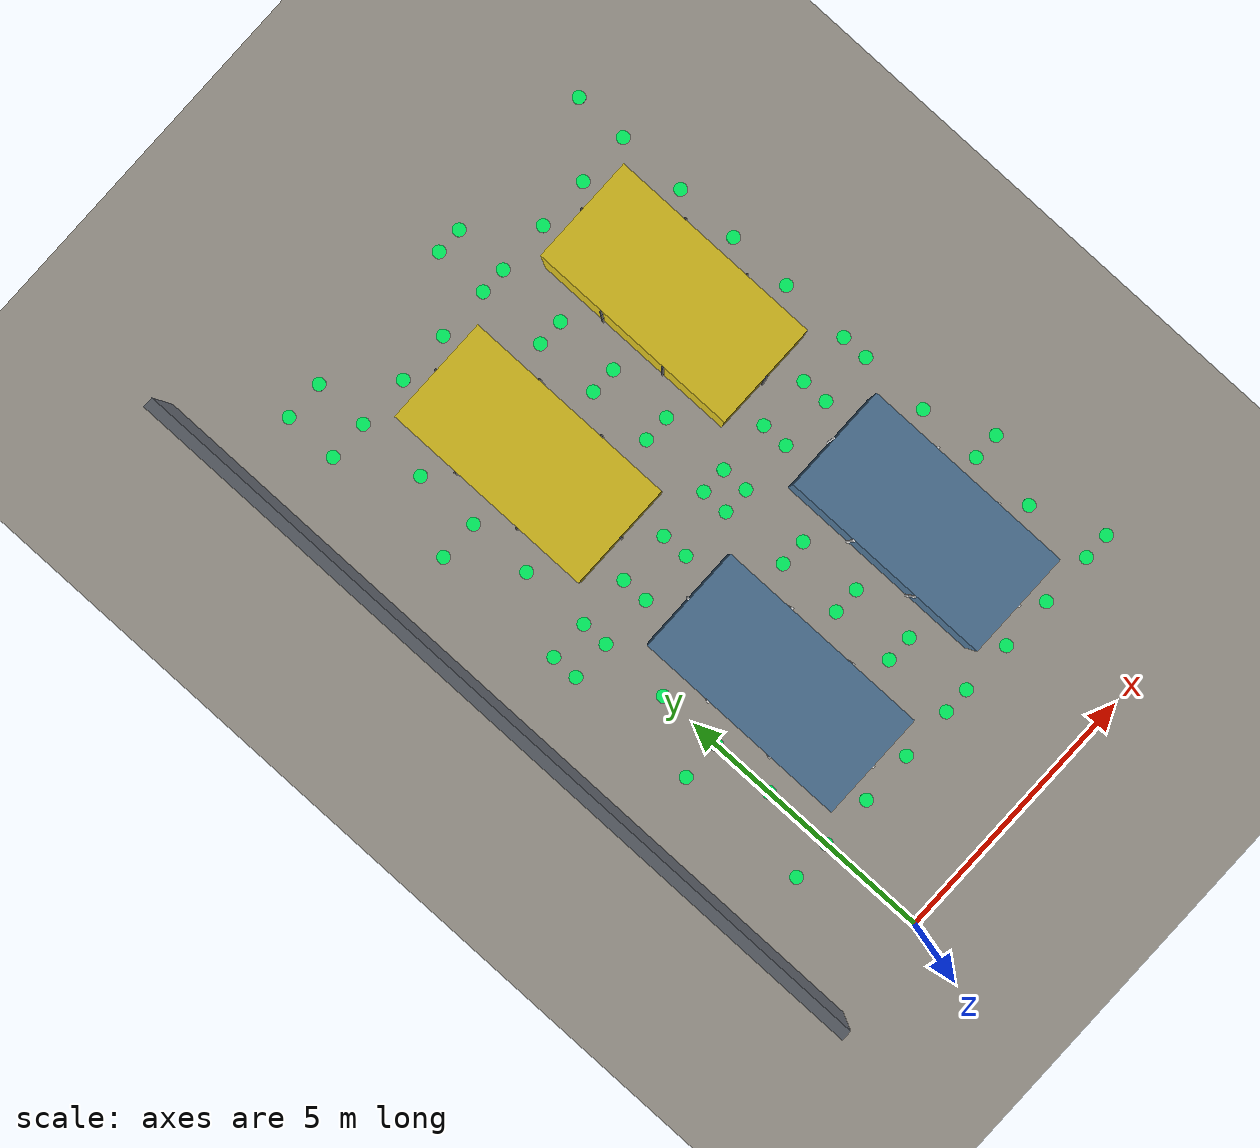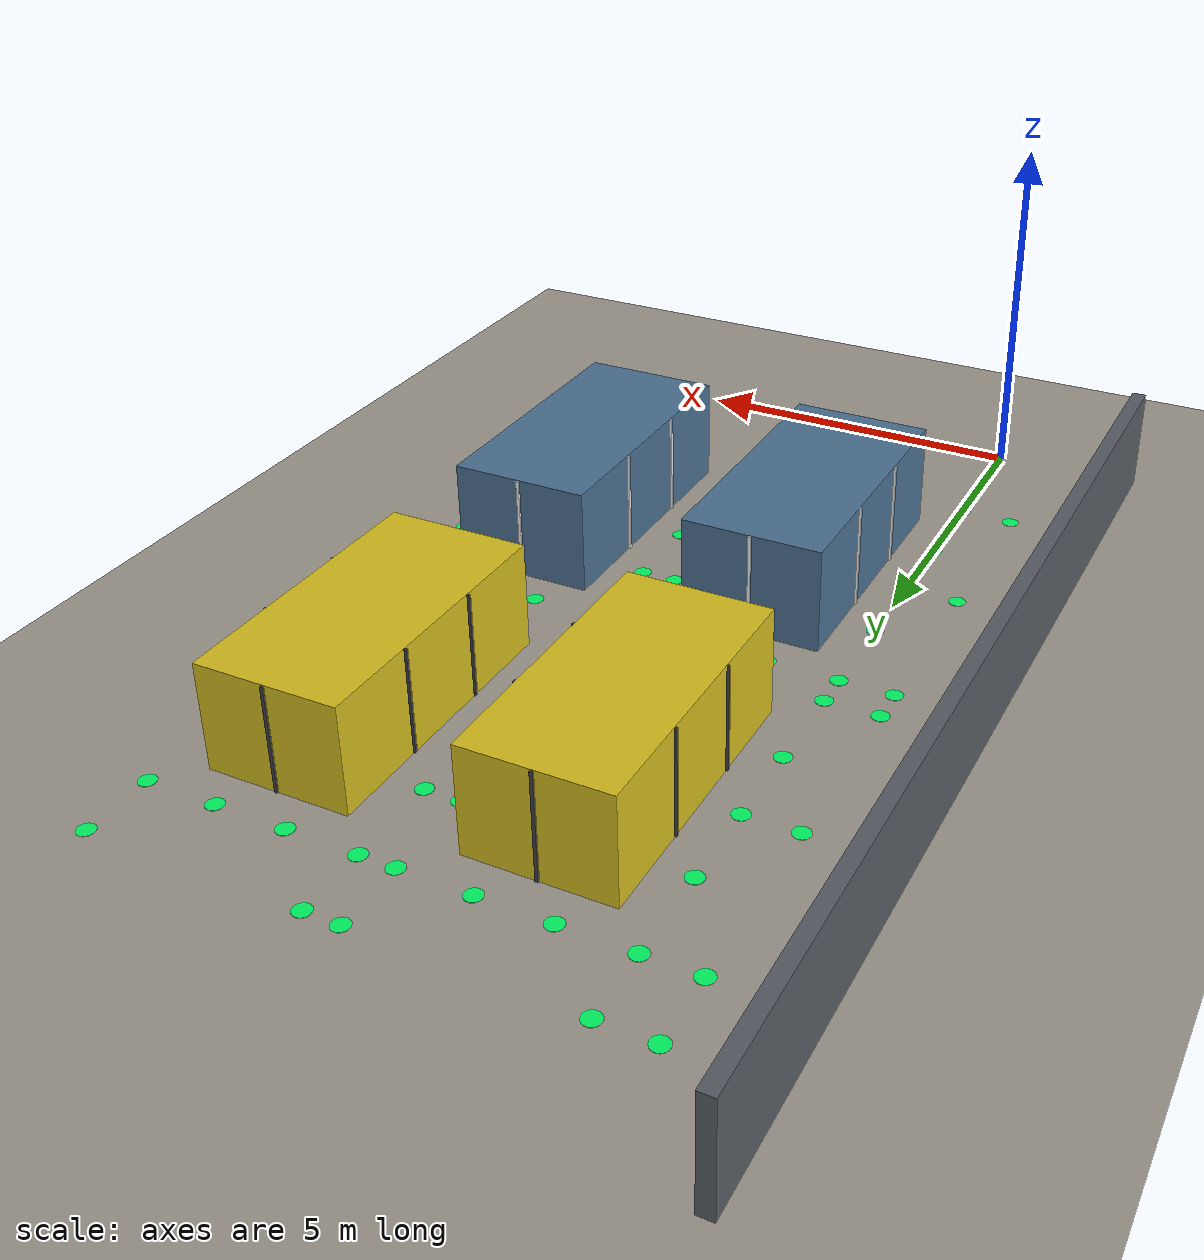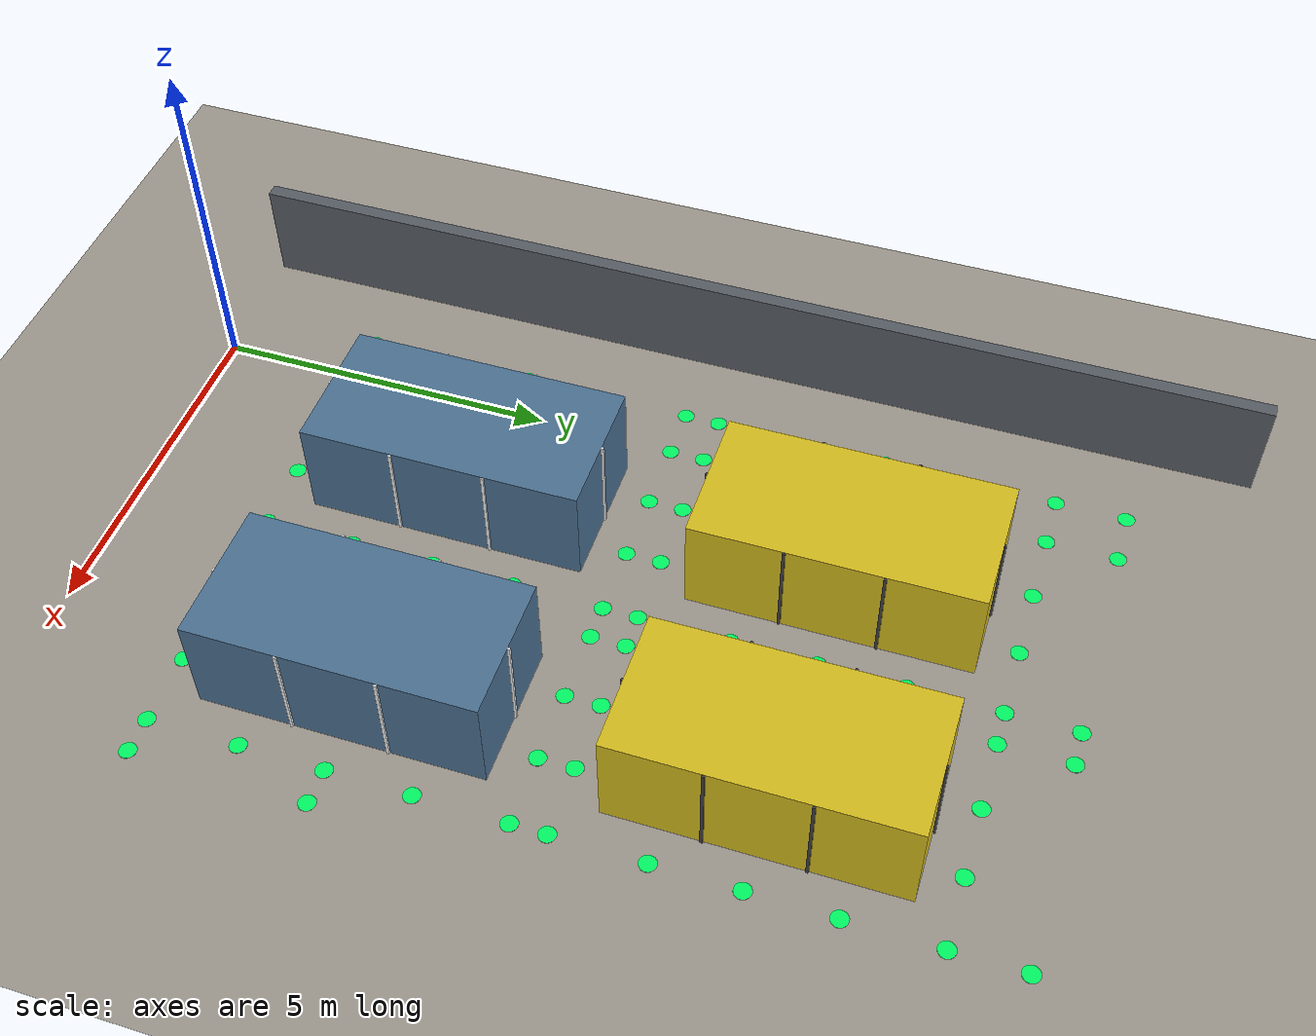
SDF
<sdf version="1.9">
 <world name="sih_warehouse">
  <model name="ground_plane">
   <static>true</static>
   <link name="link">
    <collision name="collision">
     <geometry><plane><normal>0 0 1</normal><size>100 100</size></plane></geometry>
    </collision>
    <visual name="visual">
     <geometry><plane><normal>0 0 1</normal><size>100 100</size></plane></geometry>
     <material>
      <ambient>0.55 0.53 0.50 1</ambient>
      <diffuse>0.62 0.60 0.56 1</diffuse>
      <specular>0.15 0.15 0.14 1</specular>
     </material>
    </visual>
   </link>
  </model>
  <model name="wall_west">
   <static>true</static>
   <pose>-2.0 7.5 0.75 0 0 0</pose>
   <link name="link">
    <collision name="col"><geometry><box><size>0.2 15.2 1.5</size></box></geometry></collision>
    <visual name="vis">
     <geometry><box><size>0.2 15.2 1.5</size></box></geometry>
     <material>
      <ambient>0.28 0.30 0.32 1</ambient>
      <diffuse>0.35 0.37 0.40 1</diffuse>
      <specular>0.08 0.08 0.08 1</specular>
     </material>
    </visual>
   </link>
  </model>
  <model name="rack_1A">
   <static>true</static>
   <pose>1.5 10.0 0.75 0 0 0</pose>
   <link name="link">
    <collision name="col"><geometry><box><size>2 4 1.5</size></box></geometry></collision>
    <visual name="vis">
     <geometry><box><size>2 4 1.5</size></box></geometry>
     <material>
      <ambient>0.72 0.62 0.10 1</ambient>
      <diffuse>0.85 0.75 0.12 1</diffuse>
      <specular>0.20 0.18 0.05 1</specular>
     </material>
    </visual>
   </link>
  </model>
  <model name="rack_2A">
   <static>true</static>
   <pose>5.0 10.0 0.75 0 0 0</pose>
   <link name="link">
    <collision name="col"><geometry><box><size>2 4 1.5</size></box></geometry></collision>
    <visual name="vis">
     <geometry><box><size>2 4 1.5</size></box></geometry>
     <material>
      <ambient>0.72 0.62 0.10 1</ambient>
      <diffuse>0.85 0.75 0.12 1</diffuse>
      <specular>0.20 0.18 0.05 1</specular>
     </material>
    </visual>
   </link>
  </model>
  <model name="rack_1B">
   <static>true</static>
   <pose>1.5 4.5 0.75 0 0 0</pose>
   <link name="link">
    <collision name="col"><geometry><box><size>2 4 1.5</size></box></geometry></collision>
    <visual name="vis">
     <geometry><box><size>2 4 1.5</size></box></geometry>
     <material>
      <ambient>0.22 0.35 0.48 1</ambient>
      <diffuse>0.30 0.45 0.58 1</diffuse>
      <specular>0.12 0.14 0.18 1</specular>
     </material>
    </visual>
   </link>
  </model>
  <model name="rack_2B">
   <static>true</static>
   <pose>5.0 4.5 0.75 0 0 0</pose>
   <link name="link">
    <collision name="col"><geometry><box><size>2 4 1.5</size></box></geometry></collision>
    <visual name="vis">
     <geometry><box><size>2 4 1.5</size></box></geometry>
     <material>
      <ambient>0.22 0.35 0.48 1</ambient>
      <diffuse>0.30 0.45 0.58 1</diffuse>
      <specular>0.12 0.14 0.18 1</specular>
     </material>
    </visual>
   </link>
  </model>
  <model name="vis_node_0">
   <static>true</static>
   <pose>-0.75 2.0 0.005 0 0 0</pose>
   <link name="link">
    <visual name="vis">
     <geometry><cylinder><radius>0.12</radius><length>0.005</length></cylinder></geometry>
     <material>
      <ambient>0.0 0.8 0.3 1</ambient>
      <diffuse>0.0 1.0 0.4 1</diffuse>
      <emissive>0.0 0.4 0.15 1</emissive>
     </material>
    </visual>
   </link>
  </model>
  <model name="vis_node_1">
   <static>true</static>
   <pose>-0.75 4.5 0.005 0 0 0</pose>
   <link name="link">
    <visual name="vis">
     <geometry><cylinder><radius>0.12</radius><length>0.005</length></cylinder></geometry>
     <material>
      <ambient>0.0 0.8 0.3 1</ambient>
      <diffuse>0.0 1.0 0.4 1</diffuse>
      <emissive>0.0 0.4 0.15 1</emissive>
     </material>
    </visual>
   </link>
  </model>
  <model name="vis_node_2">
   <static>true</static>
   <pose>-0.75 7.0 0.005 0 0 0</pose>
   <link name="link">
    <visual name="vis">
     <geometry><cylinder><radius>0.12</radius><length>0.005</length></cylinder></geometry>
     <material>
      <ambient>0.0 0.8 0.3 1</ambient>
      <diffuse>0.0 1.0 0.4 1</diffuse>
      <emissive>0.0 0.4 0.15 1</emissive>
     </material>
    </visual>
   </link>
  </model>
  <model name="vis_node_3">
   <static>true</static>
   <pose>-0.75 7.5 0.005 0 0 0</pose>
   <link name="link">
    <visual name="vis">
     <geometry><cylinder><radius>0.12</radius><length>0.005</length></cylinder></geometry>
     <material>
      <ambient>0.0 0.8 0.3 1</ambient>
      <diffuse>0.0 1.0 0.4 1</diffuse>
      <emissive>0.0 0.4 0.15 1</emissive>
     </material>
    </visual>
   </link>
  </model>
  <model name="vis_node_4">
   <static>true</static>
   <pose>-0.75 10.0 0.005 0 0 0</pose>
   <link name="link">
    <visual name="vis">
     <geometry><cylinder><radius>0.12</radius><length>0.005</length></cylinder></geometry>
     <material>
      <ambient>0.0 0.8 0.3 1</ambient>
      <diffuse>0.0 1.0 0.4 1</diffuse>
      <emissive>0.0 0.4 0.15 1</emissive>
     </material>
    </visual>
   </link>
  </model>
  <model name="vis_node_5">
   <static>true</static>
   <pose>-0.75 12.5 0.005 0 0 0</pose>
   <link name="link">
    <visual name="vis">
     <geometry><cylinder><radius>0.12</radius><length>0.005</length></cylinder></geometry>
     <material>
      <ambient>0.0 0.8 0.3 1</ambient>
      <diffuse>0.0 1.0 0.4 1</diffuse>
      <emissive>0.0 0.4 0.15 1</emissive>
     </material>
    </visual>
   </link>
  </model>
  <model name="vis_node_6">
   <static>true</static>
   <pose>-0.75 13.5 0.005 0 0 0</pose>
   <link name="link">
    <visual name="vis">
     <geometry><cylinder><radius>0.12</radius><length>0.005</length></cylinder></geometry>
     <material>
      <ambient>0.0 0.8 0.3 1</ambient>
      <diffuse>0.0 1.0 0.4 1</diffuse>
      <emissive>0.0 0.4 0.15 1</emissive>
     </material>
    </visual>
   </link>
  </model>
  <model name="vis_node_7">
   <static>true</static>
   <pose>0.0 2.0 0.005 0 0 0</pose>
   <link name="link">
    <visual name="vis">
     <geometry><cylinder><radius>0.12</radius><length>0.005</length></cylinder></geometry>
     <material>
      <ambient>0.0 0.8 0.3 1</ambient>
      <diffuse>0.0 1.0 0.4 1</diffuse>
      <emissive>0.0 0.4 0.15 1</emissive>
     </material>
    </visual>
   </link>
  </model>
  <model name="vis_node_8">
   <static>true</static>
   <pose>0.0 4.5 0.005 0 0 0</pose>
   <link name="link">
    <visual name="vis">
     <geometry><cylinder><radius>0.12</radius><length>0.005</length></cylinder></geometry>
     <material>
      <ambient>0.0 0.8 0.3 1</ambient>
      <diffuse>0.0 1.0 0.4 1</diffuse>
      <emissive>0.0 0.4 0.15 1</emissive>
     </material>
    </visual>
   </link>
  </model>
  <model name="vis_node_9">
   <static>true</static>
   <pose>0.0 7.0 0.005 0 0 0</pose>
   <link name="link">
    <visual name="vis">
     <geometry><cylinder><radius>0.12</radius><length>0.005</length></cylinder></geometry>
     <material>
      <ambient>0.0 0.8 0.3 1</ambient>
      <diffuse>0.0 1.0 0.4 1</diffuse>
      <emissive>0.0 0.4 0.15 1</emissive>
     </material>
    </visual>
   </link>
  </model>
  <model name="vis_node_10">
   <static>true</static>
   <pose>0.0 7.5 0.005 0 0 0</pose>
   <link name="link">
    <visual name="vis">
     <geometry><cylinder><radius>0.12</radius><length>0.005</length></cylinder></geometry>
     <material>
      <ambient>0.0 0.8 0.3 1</ambient>
      <diffuse>0.0 1.0 0.4 1</diffuse>
      <emissive>0.0 0.4 0.15 1</emissive>
     </material>
    </visual>
   </link>
  </model>
  <model name="vis_node_11">
   <static>true</static>
   <pose>0.0 10.0 0.005 0 0 0</pose>
   <link name="link">
    <visual name="vis">
     <geometry><cylinder><radius>0.12</radius><length>0.005</length></cylinder></geometry>
     <material>
      <ambient>0.0 0.8 0.3 1</ambient>
      <diffuse>0.0 1.0 0.4 1</diffuse>
      <emissive>0.0 0.4 0.15 1</emissive>
     </material>
    </visual>
   </link>
  </model>
  <model name="vis_node_12">
   <static>true</static>
   <pose>0.0 12.5 0.005 0 0 0</pose>
   <link name="link">
    <visual name="vis">
     <geometry><cylinder><radius>0.12</radius><length>0.005</length></cylinder></geometry>
     <material>
      <ambient>0.0 0.8 0.3 1</ambient>
      <diffuse>0.0 1.0 0.4 1</diffuse>
      <emissive>0.0 0.4 0.15 1</emissive>
     </material>
    </visual>
   </link>
  </model>
  <model name="vis_node_13">
   <static>true</static>
   <pose>0.0 13.5 0.005 0 0 0</pose>
   <link name="link">
    <visual name="vis">
     <geometry><cylinder><radius>0.12</radius><length>0.005</length></cylinder></geometry>
     <material>
      <ambient>0.0 0.8 0.3 1</ambient>
      <diffuse>0.0 1.0 0.4 1</diffuse>
      <emissive>0.0 0.4 0.15 1</emissive>
     </material>
    </visual>
   </link>
  </model>
  <model name="vis_node_14">
   <static>true</static>
   <pose>3.0 2.0 0.005 0 0 0</pose>
   <link name="link">
    <visual name="vis">
     <geometry><cylinder><radius>0.12</radius><length>0.005</length></cylinder></geometry>
     <material>
      <ambient>0.0 0.8 0.3 1</ambient>
      <diffuse>0.0 1.0 0.4 1</diffuse>
      <emissive>0.0 0.4 0.15 1</emissive>
     </material>
    </visual>
   </link>
  </model>
  <model name="vis_node_15">
   <static>true</static>
   <pose>3.0 4.5 0.005 0 0 0</pose>
   <link name="link">
    <visual name="vis">
     <geometry><cylinder><radius>0.12</radius><length>0.005</length></cylinder></geometry>
     <material>
      <ambient>0.0 0.8 0.3 1</ambient>
      <diffuse>0.0 1.0 0.4 1</diffuse>
      <emissive>0.0 0.4 0.15 1</emissive>
     </material>
    </visual>
   </link>
  </model>
  <model name="vis_node_16">
   <static>true</static>
   <pose>3.0 7.0 0.005 0 0 0</pose>
   <link name="link">
    <visual name="vis">
     <geometry><cylinder><radius>0.12</radius><length>0.005</length></cylinder></geometry>
     <material>
      <ambient>0.0 0.8 0.3 1</ambient>
      <diffuse>0.0 1.0 0.4 1</diffuse>
      <emissive>0.0 0.4 0.15 1</emissive>
     </material>
    </visual>
   </link>
  </model>
  <model name="vis_node_17">
   <static>true</static>
   <pose>3.0 7.5 0.005 0 0 0</pose>
   <link name="link">
    <visual name="vis">
     <geometry><cylinder><radius>0.12</radius><length>0.005</length></cylinder></geometry>
     <material>
      <ambient>0.0 0.8 0.3 1</ambient>
      <diffuse>0.0 1.0 0.4 1</diffuse>
      <emissive>0.0 0.4 0.15 1</emissive>
     </material>
    </visual>
   </link>
  </model>
  <model name="vis_node_18">
   <static>true</static>
   <pose>3.0 10.0 0.005 0 0 0</pose>
   <link name="link">
    <visual name="vis">
     <geometry><cylinder><radius>0.12</radius><length>0.005</length></cylinder></geometry>
     <material>
      <ambient>0.0 0.8 0.3 1</ambient>
      <diffuse>0.0 1.0 0.4 1</diffuse>
      <emissive>0.0 0.4 0.15 1</emissive>
     </material>
    </visual>
   </link>
  </model>
  <model name="vis_node_19">
   <static>true</static>
   <pose>3.0 12.5 0.005 0 0 0</pose>
   <link name="link">
    <visual name="vis">
     <geometry><cylinder><radius>0.12</radius><length>0.005</length></cylinder></geometry>
     <material>
      <ambient>0.0 0.8 0.3 1</ambient>
      <diffuse>0.0 1.0 0.4 1</diffuse>
      <emissive>0.0 0.4 0.15 1</emissive>
     </material>
    </visual>
   </link>
  </model>
  <model name="vis_node_20">
   <static>true</static>
   <pose>3.0 13.5 0.005 0 0 0</pose>
   <link name="link">
    <visual name="vis">
     <geometry><cylinder><radius>0.12</radius><length>0.005</length></cylinder></geometry>
     <material>
      <ambient>0.0 0.8 0.3 1</ambient>
      <diffuse>0.0 1.0 0.4 1</diffuse>
      <emissive>0.0 0.4 0.15 1</emissive>
     </material>
    </visual>
   </link>
  </model>
  <model name="vis_node_21">
   <static>true</static>
   <pose>3.5 2.0 0.005 0 0 0</pose>
   <link name="link">
    <visual name="vis">
     <geometry><cylinder><radius>0.12</radius><length>0.005</length></cylinder></geometry>
     <material>
      <ambient>0.0 0.8 0.3 1</ambient>
      <diffuse>0.0 1.0 0.4 1</diffuse>
      <emissive>0.0 0.4 0.15 1</emissive>
     </material>
    </visual>
   </link>
  </model>
  <model name="vis_node_22">
   <static>true</static>
   <pose>3.5 4.5 0.005 0 0 0</pose>
   <link name="link">
    <visual name="vis">
     <geometry><cylinder><radius>0.12</radius><length>0.005</length></cylinder></geometry>
     <material>
      <ambient>0.0 0.8 0.3 1</ambient>
      <diffuse>0.0 1.0 0.4 1</diffuse>
      <emissive>0.0 0.4 0.15 1</emissive>
     </material>
    </visual>
   </link>
  </model>
  <model name="vis_node_23">
   <static>true</static>
   <pose>3.5 7.0 0.005 0 0 0</pose>
   <link name="link">
    <visual name="vis">
     <geometry><cylinder><radius>0.12</radius><length>0.005</length></cylinder></geometry>
     <material>
      <ambient>0.0 0.8 0.3 1</ambient>
      <diffuse>0.0 1.0 0.4 1</diffuse>
      <emissive>0.0 0.4 0.15 1</emissive>
     </material>
    </visual>
   </link>
  </model>
  <model name="vis_node_24">
   <static>true</static>
   <pose>3.5 7.5 0.005 0 0 0</pose>
   <link name="link">
    <visual name="vis">
     <geometry><cylinder><radius>0.12</radius><length>0.005</length></cylinder></geometry>
     <material>
      <ambient>0.0 0.8 0.3 1</ambient>
      <diffuse>0.0 1.0 0.4 1</diffuse>
      <emissive>0.0 0.4 0.15 1</emissive>
     </material>
    </visual>
   </link>
  </model>
  <model name="vis_node_25">
   <static>true</static>
   <pose>3.5 10.0 0.005 0 0 0</pose>
   <link name="link">
    <visual name="vis">
     <geometry><cylinder><radius>0.12</radius><length>0.005</length></cylinder></geometry>
     <material>
      <ambient>0.0 0.8 0.3 1</ambient>
      <diffuse>0.0 1.0 0.4 1</diffuse>
      <emissive>0.0 0.4 0.15 1</emissive>
     </material>
    </visual>
   </link>
  </model>
  <model name="vis_node_26">
   <static>true</static>
   <pose>3.5 12.5 0.005 0 0 0</pose>
   <link name="link">
    <visual name="vis">
     <geometry><cylinder><radius>0.12</radius><length>0.005</length></cylinder></geometry>
     <material>
      <ambient>0.0 0.8 0.3 1</ambient>
      <diffuse>0.0 1.0 0.4 1</diffuse>
      <emissive>0.0 0.4 0.15 1</emissive>
     </material>
    </visual>
   </link>
  </model>
  <model name="vis_node_27">
   <static>true</static>
   <pose>3.5 13.5 0.005 0 0 0</pose>
   <link name="link">
    <visual name="vis">
     <geometry><cylinder><radius>0.12</radius><length>0.005</length></cylinder></geometry>
     <material>
      <ambient>0.0 0.8 0.3 1</ambient>
      <diffuse>0.0 1.0 0.4 1</diffuse>
      <emissive>0.0 0.4 0.15 1</emissive>
     </material>
    </visual>
   </link>
  </model>
  <model name="vis_node_28">
   <static>true</static>
   <pose>6.5 2.0 0.005 0 0 0</pose>
   <link name="link">
    <visual name="vis">
     <geometry><cylinder><radius>0.12</radius><length>0.005</length></cylinder></geometry>
     <material>
      <ambient>0.0 0.8 0.3 1</ambient>
      <diffuse>0.0 1.0 0.4 1</diffuse>
      <emissive>0.0 0.4 0.15 1</emissive>
     </material>
    </visual>
   </link>
  </model>
  <model name="vis_node_29">
   <static>true</static>
   <pose>6.5 4.5 0.005 0 0 0</pose>
   <link name="link">
    <visual name="vis">
     <geometry><cylinder><radius>0.12</radius><length>0.005</length></cylinder></geometry>
     <material>
      <ambient>0.0 0.8 0.3 1</ambient>
      <diffuse>0.0 1.0 0.4 1</diffuse>
      <emissive>0.0 0.4 0.15 1</emissive>
     </material>
    </visual>
   </link>
  </model>
  <model name="vis_node_30">
   <static>true</static>
   <pose>6.5 7.0 0.005 0 0 0</pose>
   <link name="link">
    <visual name="vis">
     <geometry><cylinder><radius>0.12</radius><length>0.005</length></cylinder></geometry>
     <material>
      <ambient>0.0 0.8 0.3 1</ambient>
      <diffuse>0.0 1.0 0.4 1</diffuse>
      <emissive>0.0 0.4 0.15 1</emissive>
     </material>
    </visual>
   </link>
  </model>
  <model name="vis_node_31">
   <static>true</static>
   <pose>6.5 7.5 0.005 0 0 0</pose>
   <link name="link">
    <visual name="vis">
     <geometry><cylinder><radius>0.12</radius><length>0.005</length></cylinder></geometry>
     <material>
      <ambient>0.0 0.8 0.3 1</ambient>
      <diffuse>0.0 1.0 0.4 1</diffuse>
      <emissive>0.0 0.4 0.15 1</emissive>
     </material>
    </visual>
   </link>
  </model>
  <model name="vis_node_32">
   <static>true</static>
   <pose>6.5 10.0 0.005 0 0 0</pose>
   <link name="link">
    <visual name="vis">
     <geometry><cylinder><radius>0.12</radius><length>0.005</length></cylinder></geometry>
     <material>
      <ambient>0.0 0.8 0.3 1</ambient>
      <diffuse>0.0 1.0 0.4 1</diffuse>
      <emissive>0.0 0.4 0.15 1</emissive>
     </material>
    </visual>
   </link>
  </model>
  <model name="vis_node_33">
   <static>true</static>
   <pose>6.5 12.5 0.005 0 0 0</pose>
   <link name="link">
    <visual name="vis">
     <geometry><cylinder><radius>0.12</radius><length>0.005</length></cylinder></geometry>
     <material>
      <ambient>0.0 0.8 0.3 1</ambient>
      <diffuse>0.0 1.0 0.4 1</diffuse>
      <emissive>0.0 0.4 0.15 1</emissive>
     </material>
    </visual>
   </link>
  </model>
  <model name="vis_node_34">
   <static>true</static>
   <pose>6.5 13.5 0.005 0 0 0</pose>
   <link name="link">
    <visual name="vis">
     <geometry><cylinder><radius>0.12</radius><length>0.005</length></cylinder></geometry>
     <material>
      <ambient>0.0 0.8 0.3 1</ambient>
      <diffuse>0.0 1.0 0.4 1</diffuse>
      <emissive>0.0 0.4 0.15 1</emissive>
     </material>
    </visual>
   </link>
  </model>
  <model name="vis_node_35">
   <static>true</static>
   <pose>7.0 2.0 0.005 0 0 0</pose>
   <link name="link">
    <visual name="vis">
     <geometry><cylinder><radius>0.12</radius><length>0.005</length></cylinder></geometry>
     <material>
      <ambient>0.0 0.8 0.3 1</ambient>
      <diffuse>0.0 1.0 0.4 1</diffuse>
      <emissive>0.0 0.4 0.15 1</emissive>
     </material>
    </visual>
   </link>
  </model>
  <model name="vis_node_36">
   <static>true</static>
   <pose>7.0 4.5 0.005 0 0 0</pose>
   <link name="link">
    <visual name="vis">
     <geometry><cylinder><radius>0.12</radius><length>0.005</length></cylinder></geometry>
     <material>
      <ambient>0.0 0.8 0.3 1</ambient>
      <diffuse>0.0 1.0 0.4 1</diffuse>
      <emissive>0.0 0.4 0.15 1</emissive>
     </material>
    </visual>
   </link>
  </model>
  <model name="vis_node_70">
   <static>true</static>
   <pose>0.0 11.2 0.005 0 0 0</pose>
   <link name="link">
    <visual name="vis">
     <geometry><cylinder><radius>0.12</radius><length>0.005</length></cylinder></geometry>
     <material>
      <ambient>0.0 0.8 0.3 1</ambient>
      <diffuse>0.0 1.0 0.4 1</diffuse>
      <emissive>0.0 0.4 0.15 1</emissive>
     </material>
    </visual>
   </link>
  </model>
  <model name="vis_node_71">
   <static>true</static>
   <pose>0.0 10.0 0.005 0 0 0</pose>
   <link name="link">
    <visual name="vis">
     <geometry><cylinder><radius>0.12</radius><length>0.005</length></cylinder></geometry>
     <material>
      <ambient>0.0 0.8 0.3 1</ambient>
      <diffuse>0.0 1.0 0.4 1</diffuse>
      <emissive>0.0 0.4 0.15 1</emissive>
     </material>
    </visual>
   </link>
  </model>
  <model name="vis_node_72">
   <static>true</static>
   <pose>0.0 8.8 0.005 0 0 0</pose>
   <link name="link">
    <visual name="vis">
     <geometry><cylinder><radius>0.12</radius><length>0.005</length></cylinder></geometry>
     <material>
      <ambient>0.0 0.8 0.3 1</ambient>
      <diffuse>0.0 1.0 0.4 1</diffuse>
      <emissive>0.0 0.4 0.15 1</emissive>
     </material>
    </visual>
   </link>
  </model>
  <model name="vis_node_73">
   <static>true</static>
   <pose>1.0 7.5 0.005 0 0 0</pose>
   <link name="link">
    <visual name="vis">
     <geometry><cylinder><radius>0.12</radius><length>0.005</length></cylinder></geometry>
     <material>
      <ambient>0.0 0.8 0.3 1</ambient>
      <diffuse>0.0 1.0 0.4 1</diffuse>
      <emissive>0.0 0.4 0.15 1</emissive>
     </material>
    </visual>
   </link>
  </model>
  <model name="vis_node_74">
   <static>true</static>
   <pose>2.0 7.5 0.005 0 0 0</pose>
   <link name="link">
    <visual name="vis">
     <geometry><cylinder><radius>0.12</radius><length>0.005</length></cylinder></geometry>
     <material>
      <ambient>0.0 0.8 0.3 1</ambient>
      <diffuse>0.0 1.0 0.4 1</diffuse>
      <emissive>0.0 0.4 0.15 1</emissive>
     </material>
    </visual>
   </link>
  </model>
  <model name="vis_node_75">
   <static>true</static>
   <pose>3.0 8.8 0.005 0 0 0</pose>
   <link name="link">
    <visual name="vis">
     <geometry><cylinder><radius>0.12</radius><length>0.005</length></cylinder></geometry>
     <material>
      <ambient>0.0 0.8 0.3 1</ambient>
      <diffuse>0.0 1.0 0.4 1</diffuse>
      <emissive>0.0 0.4 0.15 1</emissive>
     </material>
    </visual>
   </link>
  </model>
  <model name="vis_node_76">
   <static>true</static>
   <pose>3.0 10.0 0.005 0 0 0</pose>
   <link name="link">
    <visual name="vis">
     <geometry><cylinder><radius>0.12</radius><length>0.005</length></cylinder></geometry>
     <material>
      <ambient>0.0 0.8 0.3 1</ambient>
      <diffuse>0.0 1.0 0.4 1</diffuse>
      <emissive>0.0 0.4 0.15 1</emissive>
     </material>
    </visual>
   </link>
  </model>
  <model name="vis_node_77">
   <static>true</static>
   <pose>3.0 11.2 0.005 0 0 0</pose>
   <link name="link">
    <visual name="vis">
     <geometry><cylinder><radius>0.12</radius><length>0.005</length></cylinder></geometry>
     <material>
      <ambient>0.0 0.8 0.3 1</ambient>
      <diffuse>0.0 1.0 0.4 1</diffuse>
      <emissive>0.0 0.4 0.15 1</emissive>
     </material>
    </visual>
   </link>
  </model>
  <model name="vis_node_78">
   <static>true</static>
   <pose>2.0 12.5 0.005 0 0 0</pose>
   <link name="link">
    <visual name="vis">
     <geometry><cylinder><radius>0.12</radius><length>0.005</length></cylinder></geometry>
     <material>
      <ambient>0.0 0.8 0.3 1</ambient>
      <diffuse>0.0 1.0 0.4 1</diffuse>
      <emissive>0.0 0.4 0.15 1</emissive>
     </material>
    </visual>
   </link>
  </model>
  <model name="vis_node_79">
   <static>true</static>
   <pose>1.0 12.5 0.005 0 0 0</pose>
   <link name="link">
    <visual name="vis">
     <geometry><cylinder><radius>0.12</radius><length>0.005</length></cylinder></geometry>
     <material>
      <ambient>0.0 0.8 0.3 1</ambient>
      <diffuse>0.0 1.0 0.4 1</diffuse>
      <emissive>0.0 0.4 0.15 1</emissive>
     </material>
    </visual>
   </link>
  </model>
  <model name="vis_node_80">
   <static>true</static>
   <pose>3.5 11.2 0.005 0 0 0</pose>
   <link name="link">
    <visual name="vis">
     <geometry><cylinder><radius>0.12</radius><length>0.005</length></cylinder></geometry>
     <material>
      <ambient>0.0 0.8 0.3 1</ambient>
      <diffuse>0.0 1.0 0.4 1</diffuse>
      <emissive>0.0 0.4 0.15 1</emissive>
     </material>
    </visual>
   </link>
  </model>
  <model name="vis_node_81">
   <static>true</static>
   <pose>3.5 10.0 0.005 0 0 0</pose>
   <link name="link">
    <visual name="vis">
     <geometry><cylinder><radius>0.12</radius><length>0.005</length></cylinder></geometry>
     <material>
      <ambient>0.0 0.8 0.3 1</ambient>
      <diffuse>0.0 1.0 0.4 1</diffuse>
      <emissive>0.0 0.4 0.15 1</emissive>
     </material>
    </visual>
   </link>
  </model>
  <model name="vis_node_82">
   <static>true</static>
   <pose>3.5 8.8 0.005 0 0 0</pose>
   <link name="link">
    <visual name="vis">
     <geometry><cylinder><radius>0.12</radius><length>0.005</length></cylinder></geometry>
     <material>
      <ambient>0.0 0.8 0.3 1</ambient>
      <diffuse>0.0 1.0 0.4 1</diffuse>
      <emissive>0.0 0.4 0.15 1</emissive>
     </material>
    </visual>
   </link>
  </model>
  <model name="vis_node_83">
   <static>true</static>
   <pose>4.5 7.5 0.005 0 0 0</pose>
   <link name="link">
    <visual name="vis">
     <geometry><cylinder><radius>0.12</radius><length>0.005</length></cylinder></geometry>
     <material>
      <ambient>0.0 0.8 0.3 1</ambient>
      <diffuse>0.0 1.0 0.4 1</diffuse>
      <emissive>0.0 0.4 0.15 1</emissive>
     </material>
    </visual>
   </link>
  </model>
  <model name="vis_node_84">
   <static>true</static>
   <pose>5.5 7.5 0.005 0 0 0</pose>
   <link name="link">
    <visual name="vis">
     <geometry><cylinder><radius>0.12</radius><length>0.005</length></cylinder></geometry>
     <material>
      <ambient>0.0 0.8 0.3 1</ambient>
      <diffuse>0.0 1.0 0.4 1</diffuse>
      <emissive>0.0 0.4 0.15 1</emissive>
     </material>
    </visual>
   </link>
  </model>
  <model name="vis_node_85">
   <static>true</static>
   <pose>6.5 8.8 0.005 0 0 0</pose>
   <link name="link">
    <visual name="vis">
     <geometry><cylinder><radius>0.12</radius><length>0.005</length></cylinder></geometry>
     <material>
      <ambient>0.0 0.8 0.3 1</ambient>
      <diffuse>0.0 1.0 0.4 1</diffuse>
      <emissive>0.0 0.4 0.15 1</emissive>
     </material>
    </visual>
   </link>
  </model>
  <model name="vis_node_86">
   <static>true</static>
   <pose>6.5 10.0 0.005 0 0 0</pose>
   <link name="link">
    <visual name="vis">
     <geometry><cylinder><radius>0.12</radius><length>0.005</length></cylinder></geometry>
     <material>
      <ambient>0.0 0.8 0.3 1</ambient>
      <diffuse>0.0 1.0 0.4 1</diffuse>
      <emissive>0.0 0.4 0.15 1</emissive>
     </material>
    </visual>
   </link>
  </model>
  <model name="vis_node_87">
   <static>true</static>
   <pose>6.5 11.2 0.005 0 0 0</pose>
   <link name="link">
    <visual name="vis">
     <geometry><cylinder><radius>0.12</radius><length>0.005</length></cylinder></geometry>
     <material>
      <ambient>0.0 0.8 0.3 1</ambient>
      <diffuse>0.0 1.0 0.4 1</diffuse>
      <emissive>0.0 0.4 0.15 1</emissive>
     </material>
    </visual>
   </link>
  </model>
  <model name="vis_node_88">
   <static>true</static>
   <pose>5.5 12.5 0.005 0 0 0</pose>
   <link name="link">
    <visual name="vis">
     <geometry><cylinder><radius>0.12</radius><length>0.005</length></cylinder></geometry>
     <material>
      <ambient>0.0 0.8 0.3 1</ambient>
      <diffuse>0.0 1.0 0.4 1</diffuse>
      <emissive>0.0 0.4 0.15 1</emissive>
     </material>
    </visual>
   </link>
  </model>
  <model name="vis_node_89">
   <static>true</static>
   <pose>4.5 12.5 0.005 0 0 0</pose>
   <link name="link">
    <visual name="vis">
     <geometry><cylinder><radius>0.12</radius><length>0.005</length></cylinder></geometry>
     <material>
      <ambient>0.0 0.8 0.3 1</ambient>
      <diffuse>0.0 1.0 0.4 1</diffuse>
      <emissive>0.0 0.4 0.15 1</emissive>
     </material>
    </visual>
   </link>
  </model>
  <model name="vis_node_110">
   <static>true</static>
   <pose>0.0 5.7 0.005 0 0 0</pose>
   <link name="link">
    <visual name="vis">
     <geometry><cylinder><radius>0.12</radius><length>0.005</length></cylinder></geometry>
     <material>
      <ambient>0.0 0.8 0.3 1</ambient>
      <diffuse>0.0 1.0 0.4 1</diffuse>
      <emissive>0.0 0.4 0.15 1</emissive>
     </material>
    </visual>
   </link>
  </model>
  <model name="vis_node_111">
   <static>true</static>
   <pose>0.0 4.5 0.005 0 0 0</pose>
   <link name="link">
    <visual name="vis">
     <geometry><cylinder><radius>0.12</radius><length>0.005</length></cylinder></geometry>
     <material>
      <ambient>0.0 0.8 0.3 1</ambient>
      <diffuse>0.0 1.0 0.4 1</diffuse>
      <emissive>0.0 0.4 0.15 1</emissive>
     </material>
    </visual>
   </link>
  </model>
  <model name="vis_node_112">
   <static>true</static>
   <pose>0.0 3.3 0.005 0 0 0</pose>
   <link name="link">
    <visual name="vis">
     <geometry><cylinder><radius>0.12</radius><length>0.005</length></cylinder></geometry>
     <material>
      <ambient>0.0 0.8 0.3 1</ambient>
      <diffuse>0.0 1.0 0.4 1</diffuse>
      <emissive>0.0 0.4 0.15 1</emissive>
     </material>
    </visual>
   </link>
  </model>
  <model name="vis_node_113">
   <static>true</static>
   <pose>1.0 2.0 0.005 0 0 0</pose>
   <link name="link">
    <visual name="vis">
     <geometry><cylinder><radius>0.12</radius><length>0.005</length></cylinder></geometry>
     <material>
      <ambient>0.0 0.8 0.3 1</ambient>
      <diffuse>0.0 1.0 0.4 1</diffuse>
      <emissive>0.0 0.4 0.15 1</emissive>
     </material>
    </visual>
   </link>
  </model>
  <model name="vis_node_114">
   <static>true</static>
   <pose>2.0 2.0 0.005 0 0 0</pose>
   <link name="link">
    <visual name="vis">
     <geometry><cylinder><radius>0.12</radius><length>0.005</length></cylinder></geometry>
     <material>
      <ambient>0.0 0.8 0.3 1</ambient>
      <diffuse>0.0 1.0 0.4 1</diffuse>
      <emissive>0.0 0.4 0.15 1</emissive>
     </material>
    </visual>
   </link>
  </model>
  <model name="vis_node_115">
   <static>true</static>
   <pose>3.0 3.3 0.005 0 0 0</pose>
   <link name="link">
    <visual name="vis">
     <geometry><cylinder><radius>0.12</radius><length>0.005</length></cylinder></geometry>
     <material>
      <ambient>0.0 0.8 0.3 1</ambient>
      <diffuse>0.0 1.0 0.4 1</diffuse>
      <emissive>0.0 0.4 0.15 1</emissive>
     </material>
    </visual>
   </link>
  </model>
  <model name="vis_node_116">
   <static>true</static>
   <pose>3.0 4.5 0.005 0 0 0</pose>
   <link name="link">
    <visual name="vis">
     <geometry><cylinder><radius>0.12</radius><length>0.005</length></cylinder></geometry>
     <material>
      <ambient>0.0 0.8 0.3 1</ambient>
      <diffuse>0.0 1.0 0.4 1</diffuse>
      <emissive>0.0 0.4 0.15 1</emissive>
     </material>
    </visual>
   </link>
  </model>
  <model name="vis_node_117">
   <static>true</static>
   <pose>3.0 5.7 0.005 0 0 0</pose>
   <link name="link">
    <visual name="vis">
     <geometry><cylinder><radius>0.12</radius><length>0.005</length></cylinder></geometry>
     <material>
      <ambient>0.0 0.8 0.3 1</ambient>
      <diffuse>0.0 1.0 0.4 1</diffuse>
      <emissive>0.0 0.4 0.15 1</emissive>
     </material>
    </visual>
   </link>
  </model>
  <model name="vis_node_118">
   <static>true</static>
   <pose>2.0 7.0 0.005 0 0 0</pose>
   <link name="link">
    <visual name="vis">
     <geometry><cylinder><radius>0.12</radius><length>0.005</length></cylinder></geometry>
     <material>
      <ambient>0.0 0.8 0.3 1</ambient>
      <diffuse>0.0 1.0 0.4 1</diffuse>
      <emissive>0.0 0.4 0.15 1</emissive>
     </material>
    </visual>
   </link>
  </model>
  <model name="vis_node_119">
   <static>true</static>
   <pose>1.0 7.0 0.005 0 0 0</pose>
   <link name="link">
    <visual name="vis">
     <geometry><cylinder><radius>0.12</radius><length>0.005</length></cylinder></geometry>
     <material>
      <ambient>0.0 0.8 0.3 1</ambient>
      <diffuse>0.0 1.0 0.4 1</diffuse>
      <emissive>0.0 0.4 0.15 1</emissive>
     </material>
    </visual>
   </link>
  </model>
  <model name="vis_node_120">
   <static>true</static>
   <pose>3.5 5.7 0.005 0 0 0</pose>
   <link name="link">
    <visual name="vis">
     <geometry><cylinder><radius>0.12</radius><length>0.005</length></cylinder></geometry>
     <material>
      <ambient>0.0 0.8 0.3 1</ambient>
      <diffuse>0.0 1.0 0.4 1</diffuse>
      <emissive>0.0 0.4 0.15 1</emissive>
     </material>
    </visual>
   </link>
  </model>
  <model name="vis_node_121">
   <static>true</static>
   <pose>3.5 4.5 0.005 0 0 0</pose>
   <link name="link">
    <visual name="vis">
     <geometry><cylinder><radius>0.12</radius><length>0.005</length></cylinder></geometry>
     <material>
      <ambient>0.0 0.8 0.3 1</ambient>
      <diffuse>0.0 1.0 0.4 1</diffuse>
      <emissive>0.0 0.4 0.15 1</emissive>
     </material>
    </visual>
   </link>
  </model>
  <model name="vis_node_122">
   <static>true</static>
   <pose>3.5 3.3 0.005 0 0 0</pose>
   <link name="link">
    <visual name="vis">
     <geometry><cylinder><radius>0.12</radius><length>0.005</length></cylinder></geometry>
     <material>
      <ambient>0.0 0.8 0.3 1</ambient>
      <diffuse>0.0 1.0 0.4 1</diffuse>
      <emissive>0.0 0.4 0.15 1</emissive>
     </material>
    </visual>
   </link>
  </model>
  <model name="vis_node_123">
   <static>true</static>
   <pose>4.5 2.0 0.005 0 0 0</pose>
   <link name="link">
    <visual name="vis">
     <geometry><cylinder><radius>0.12</radius><length>0.005</length></cylinder></geometry>
     <material>
      <ambient>0.0 0.8 0.3 1</ambient>
      <diffuse>0.0 1.0 0.4 1</diffuse>
      <emissive>0.0 0.4 0.15 1</emissive>
     </material>
    </visual>
   </link>
  </model>
  <model name="vis_node_124">
   <static>true</static>
   <pose>5.5 2.0 0.005 0 0 0</pose>
   <link name="link">
    <visual name="vis">
     <geometry><cylinder><radius>0.12</radius><length>0.005</length></cylinder></geometry>
     <material>
      <ambient>0.0 0.8 0.3 1</ambient>
      <diffuse>0.0 1.0 0.4 1</diffuse>
      <emissive>0.0 0.4 0.15 1</emissive>
     </material>
    </visual>
   </link>
  </model>
  <model name="vis_node_125">
   <static>true</static>
   <pose>6.5 3.3 0.005 0 0 0</pose>
   <link name="link">
    <visual name="vis">
     <geometry><cylinder><radius>0.12</radius><length>0.005</length></cylinder></geometry>
     <material>
      <ambient>0.0 0.8 0.3 1</ambient>
      <diffuse>0.0 1.0 0.4 1</diffuse>
      <emissive>0.0 0.4 0.15 1</emissive>
     </material>
    </visual>
   </link>
  </model>
  <model name="vis_node_126">
   <static>true</static>
   <pose>6.5 4.5 0.005 0 0 0</pose>
   <link name="link">
    <visual name="vis">
     <geometry><cylinder><radius>0.12</radius><length>0.005</length></cylinder></geometry>
     <material>
      <ambient>0.0 0.8 0.3 1</ambient>
      <diffuse>0.0 1.0 0.4 1</diffuse>
      <emissive>0.0 0.4 0.15 1</emissive>
     </material>
    </visual>
   </link>
  </model>
  <model name="vis_node_127">
   <static>true</static>
   <pose>6.5 5.7 0.005 0 0 0</pose>
   <link name="link">
    <visual name="vis">
     <geometry><cylinder><radius>0.12</radius><length>0.005</length></cylinder></geometry>
     <material>
      <ambient>0.0 0.8 0.3 1</ambient>
      <diffuse>0.0 1.0 0.4 1</diffuse>
      <emissive>0.0 0.4 0.15 1</emissive>
     </material>
    </visual>
   </link>
  </model>
  <model name="vis_node_128">
   <static>true</static>
   <pose>5.5 7.0 0.005 0 0 0</pose>
   <link name="link">
    <visual name="vis">
     <geometry><cylinder><radius>0.12</radius><length>0.005</length></cylinder></geometry>
     <material>
      <ambient>0.0 0.8 0.3 1</ambient>
      <diffuse>0.0 1.0 0.4 1</diffuse>
      <emissive>0.0 0.4 0.15 1</emissive>
     </material>
    </visual>
   </link>
  </model>
  <model name="vis_node_129">
   <static>true</static>
   <pose>4.5 7.0 0.005 0 0 0</pose>
   <link name="link">
    <visual name="vis">
     <geometry><cylinder><radius>0.12</radius><length>0.005</length></cylinder></geometry>
     <material>
      <ambient>0.0 0.8 0.3 1</ambient>
      <diffuse>0.0 1.0 0.4 1</diffuse>
      <emissive>0.0 0.4 0.15 1</emissive>
     </material>
    </visual>
   </link>
  </model>
  <model name="vis_div_0">
   <static>true</static>
   <pose>0.49 9.33 0.75 0 0 0</pose>
   <link name="link">
    <visual name="vis">
     <geometry><box><size>0.04 0.04 1.48</size></box></geometry>
     <material><ambient>0.15 0.15 0.15 1</ambient><diffuse>0.25 0.25 0.25 1</diffuse></material>
    </visual>
   </link>
  </model>
  <model name="vis_div_1">
   <static>true</static>
   <pose>0.49 10.67 0.75 0 0 0</pose>
   <link name="link">
    <visual name="vis">
     <geometry><box><size>0.04 0.04 1.48</size></box></geometry>
     <material><ambient>0.15 0.15 0.15 1</ambient><diffuse>0.25 0.25 0.25 1</diffuse></material>
    </visual>
   </link>
  </model>
  <model name="vis_div_2">
   <static>true</static>
   <pose>1.5 7.99 0.75 0 0 0</pose>
   <link name="link">
    <visual name="vis">
     <geometry><box><size>0.04 0.04 1.48</size></box></geometry>
     <material><ambient>0.15 0.15 0.15 1</ambient><diffuse>0.25 0.25 0.25 1</diffuse></material>
    </visual>
   </link>
  </model>
  <model name="vis_div_3">
   <static>true</static>
   <pose>2.51 9.33 0.75 0 0 0</pose>
   <link name="link">
    <visual name="vis">
     <geometry><box><size>0.04 0.04 1.48</size></box></geometry>
     <material><ambient>0.15 0.15 0.15 1</ambient><diffuse>0.25 0.25 0.25 1</diffuse></material>
    </visual>
   </link>
  </model>
  <model name="vis_div_4">
   <static>true</static>
   <pose>2.51 10.67 0.75 0 0 0</pose>
   <link name="link">
    <visual name="vis">
     <geometry><box><size>0.04 0.04 1.48</size></box></geometry>
     <material><ambient>0.15 0.15 0.15 1</ambient><diffuse>0.25 0.25 0.25 1</diffuse></material>
    </visual>
   </link>
  </model>
  <model name="vis_div_5">
   <static>true</static>
   <pose>1.5 12.01 0.75 0 0 0</pose>
   <link name="link">
    <visual name="vis">
     <geometry><box><size>0.04 0.04 1.48</size></box></geometry>
     <material><ambient>0.15 0.15 0.15 1</ambient><diffuse>0.25 0.25 0.25 1</diffuse></material>
    </visual>
   </link>
  </model>
  <model name="vis_div_6">
   <static>true</static>
   <pose>3.99 9.33 0.75 0 0 0</pose>
   <link name="link">
    <visual name="vis">
     <geometry><box><size>0.04 0.04 1.48</size></box></geometry>
     <material><ambient>0.15 0.15 0.15 1</ambient><diffuse>0.25 0.25 0.25 1</diffuse></material>
    </visual>
   </link>
  </model>
  <model name="vis_div_7">
   <static>true</static>
   <pose>3.99 10.67 0.75 0 0 0</pose>
   <link name="link">
    <visual name="vis">
     <geometry><box><size>0.04 0.04 1.48</size></box></geometry>
     <material><ambient>0.15 0.15 0.15 1</ambient><diffuse>0.25 0.25 0.25 1</diffuse></material>
    </visual>
   </link>
  </model>
  <model name="vis_div_8">
   <static>true</static>
   <pose>5.0 7.99 0.75 0 0 0</pose>
   <link name="link">
    <visual name="vis">
     <geometry><box><size>0.04 0.04 1.48</size></box></geometry>
     <material><ambient>0.15 0.15 0.15 1</ambient><diffuse>0.25 0.25 0.25 1</diffuse></material>
    </visual>
   </link>
  </model>
  <model name="vis_div_9">
   <static>true</static>
   <pose>6.01 9.33 0.75 0 0 0</pose>
   <link name="link">
    <visual name="vis">
     <geometry><box><size>0.04 0.04 1.48</size></box></geometry>
     <material><ambient>0.15 0.15 0.15 1</ambient><diffuse>0.25 0.25 0.25 1</diffuse></material>
    </visual>
   </link>
  </model>
  <model name="vis_div_10">
   <static>true</static>
   <pose>6.01 10.67 0.75 0 0 0</pose>
   <link name="link">
    <visual name="vis">
     <geometry><box><size>0.04 0.04 1.48</size></box></geometry>
     <material><ambient>0.15 0.15 0.15 1</ambient><diffuse>0.25 0.25 0.25 1</diffuse></material>
    </visual>
   </link>
  </model>
  <model name="vis_div_11">
   <static>true</static>
   <pose>5.0 12.01 0.75 0 0 0</pose>
   <link name="link">
    <visual name="vis">
     <geometry><box><size>0.04 0.04 1.48</size></box></geometry>
     <material><ambient>0.15 0.15 0.15 1</ambient><diffuse>0.25 0.25 0.25 1</diffuse></material>
    </visual>
   </link>
  </model>
  <model name="vis_div_24">
   <static>true</static>
   <pose>0.49 3.83 0.75 0 0 0</pose>
   <link name="link">
    <visual name="vis">
     <geometry><box><size>0.04 0.04 1.48</size></box></geometry>
     <material><ambient>0.85 0.85 0.85 1</ambient><diffuse>0.95 0.95 0.95 1</diffuse></material>
    </visual>
   </link>
  </model>
  <model name="vis_div_25">
   <static>true</static>
   <pose>0.49 5.17 0.75 0 0 0</pose>
   <link name="link">
    <visual name="vis">
     <geometry><box><size>0.04 0.04 1.48</size></box></geometry>
     <material><ambient>0.85 0.85 0.85 1</ambient><diffuse>0.95 0.95 0.95 1</diffuse></material>
    </visual>
   </link>
  </model>
  <model name="vis_div_26">
   <static>true</static>
   <pose>1.5 2.49 0.75 0 0 0</pose>
   <link name="link">
    <visual name="vis">
     <geometry><box><size>0.04 0.04 1.48</size></box></geometry>
     <material><ambient>0.85 0.85 0.85 1</ambient><diffuse>0.95 0.95 0.95 1</diffuse></material>
    </visual>
   </link>
  </model>
  <model name="vis_div_27">
   <static>true</static>
   <pose>2.51 3.83 0.75 0 0 0</pose>
   <link name="link">
    <visual name="vis">
     <geometry><box><size>0.04 0.04 1.48</size></box></geometry>
     <material><ambient>0.85 0.85 0.85 1</ambient><diffuse>0.95 0.95 0.95 1</diffuse></material>
    </visual>
   </link>
  </model>
  <model name="vis_div_28">
   <static>true</static>
   <pose>2.51 5.17 0.75 0 0 0</pose>
   <link name="link">
    <visual name="vis">
     <geometry><box><size>0.04 0.04 1.48</size></box></geometry>
     <material><ambient>0.85 0.85 0.85 1</ambient><diffuse>0.95 0.95 0.95 1</diffuse></material>
    </visual>
   </link>
  </model>
  <model name="vis_div_29">
   <static>true</static>
   <pose>1.5 6.51 0.75 0 0 0</pose>
   <link name="link">
    <visual name="vis">
     <geometry><box><size>0.04 0.04 1.48</size></box></geometry>
     <material><ambient>0.85 0.85 0.85 1</ambient><diffuse>0.95 0.95 0.95 1</diffuse></material>
    </visual>
   </link>
  </model>
  <model name="vis_div_30">
   <static>true</static>
   <pose>3.99 3.83 0.75 0 0 0</pose>
   <link name="link">
    <visual name="vis">
     <geometry><box><size>0.04 0.04 1.48</size></box></geometry>
     <material><ambient>0.85 0.85 0.85 1</ambient><diffuse>0.95 0.95 0.95 1</diffuse></material>
    </visual>
   </link>
  </model>
  <model name="vis_div_31">
   <static>true</static>
   <pose>3.99 5.17 0.75 0 0 0</pose>
   <link name="link">
    <visual name="vis">
     <geometry><box><size>0.04 0.04 1.48</size></box></geometry>
     <material><ambient>0.85 0.85 0.85 1</ambient><diffuse>0.95 0.95 0.95 1</diffuse></material>
    </visual>
   </link>
  </model>
  <model name="vis_div_32">
   <static>true</static>
   <pose>5.0 2.49 0.75 0 0 0</pose>
   <link name="link">
    <visual name="vis">
     <geometry><box><size>0.04 0.04 1.48</size></box></geometry>
     <material><ambient>0.85 0.85 0.85 1</ambient><diffuse>0.95 0.95 0.95 1</diffuse></material>
    </visual>
   </link>
  </model>
  <model name="vis_div_33">
   <static>true</static>
   <pose>6.01 3.83 0.75 0 0 0</pose>
   <link name="link">
    <visual name="vis">
     <geometry><box><size>0.04 0.04 1.48</size></box></geometry>
     <material><ambient>0.85 0.85 0.85 1</ambient><diffuse>0.95 0.95 0.95 1</diffuse></material>
    </visual>
   </link>
  </model>
  <model name="vis_div_34">
   <static>true</static>
   <pose>6.01 5.17 0.75 0 0 0</pose>
   <link name="link">
    <visual name="vis">
     <geometry><box><size>0.04 0.04 1.48</size></box></geometry>
     <material><ambient>0.85 0.85 0.85 1</ambient><diffuse>0.95 0.95 0.95 1</diffuse></material>
    </visual>
   </link>
  </model>
  <model name="vis_div_35">
   <static>true</static>
   <pose>5.0 6.51 0.75 0 0 0</pose>
   <link name="link">
    <visual name="vis">
     <geometry><box><size>0.04 0.04 1.48</size></box></geometry>
     <material><ambient>0.85 0.85 0.85 1</ambient><diffuse>0.95 0.95 0.95 1</diffuse></material>
    </visual>
   </link>
  </model>
 </world>
</sdf>
